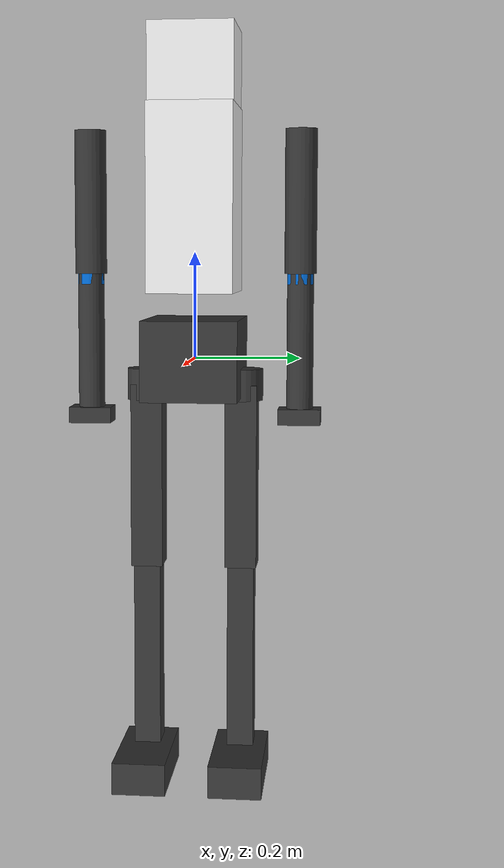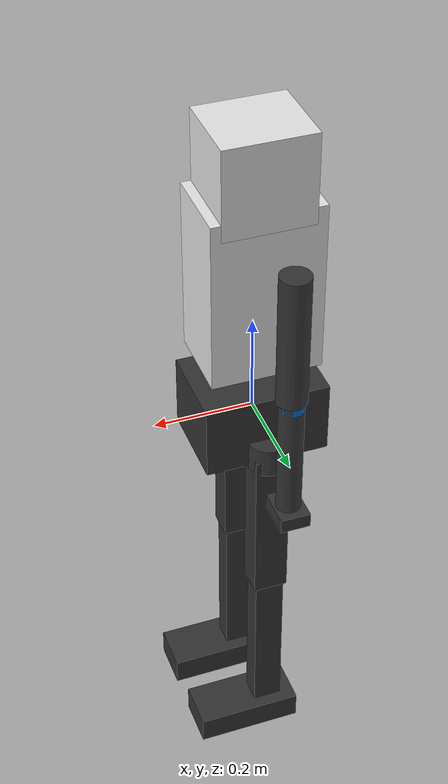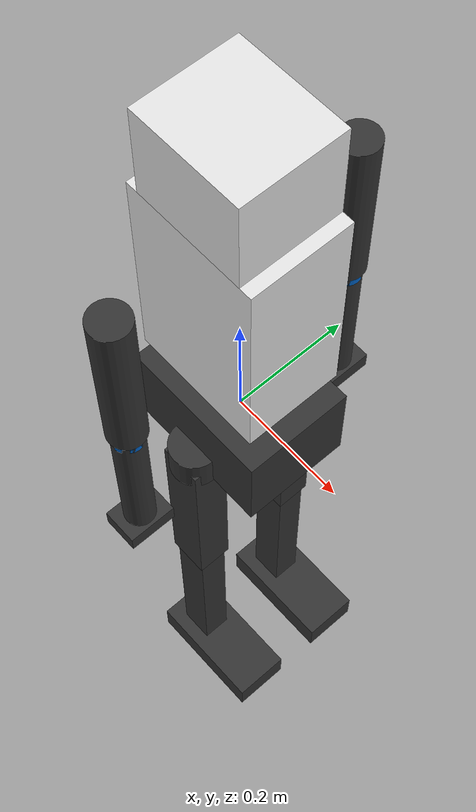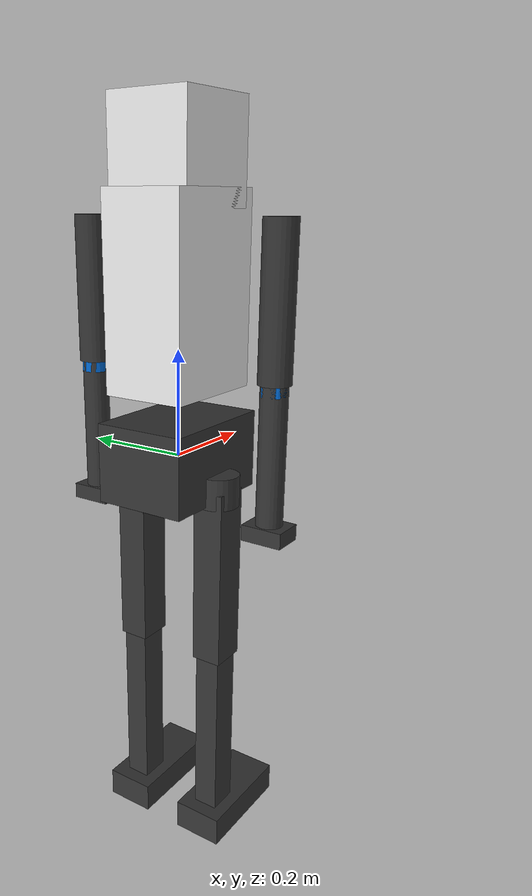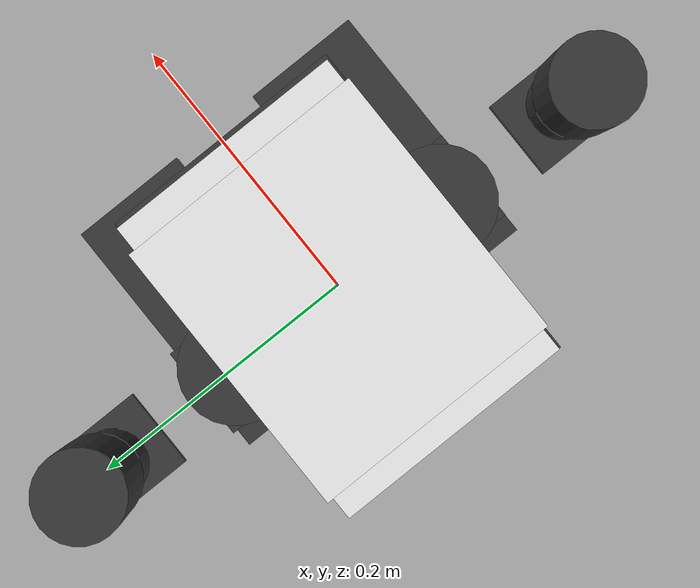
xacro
<?xml version="1.0"?>
<robot xmlns:xacro="http://www.ros.org/wiki/xacro" name="h1">

  <!-- ═══════════════════════════════════════════════════════════════
       Parameters
  ═══════════════════════════════════════════════════════════════ -->
  <xacro:property name="PI" value="3.14159265358979"/>
  <xacro:property name="robot_mass" value="47.0"/>

  <!-- ═══════════════════════════════════════════════════════════════
       Materials
  ═══════════════════════════════════════════════════════════════ -->
  <material name="dark_gray">
    <color rgba="0.2 0.2 0.2 1.0"/>
  </material>
  <material name="white">
    <color rgba="0.9 0.9 0.9 1.0"/>
  </material>
  <material name="blue">
    <color rgba="0.0 0.4 0.8 1.0"/>
  </material>

  <!-- ═══════════════════════════════════════════════════════════════
       Base / Pelvis
  ═══════════════════════════════════════════════════════════════ -->
  <link name="pelvis">
    <inertial>
      <origin xyz="0.0 0.0 0.0" rpy="0 0 0"/>
      <mass value="10.0"/>
      <inertia ixx="0.1" ixy="0.0" ixz="0.0" iyy="0.1" iyz="0.0" izz="0.07"/>
    </inertial>
    <visual>
      <origin xyz="0.0 0.0 0.0" rpy="0 0 0"/>
      <geometry>
        <box size="0.25 0.18 0.15"/>
      </geometry>
      <material name="dark_gray"/>
    </visual>
    <collision>
      <origin xyz="0.0 0.0 0.0" rpy="0 0 0"/>
      <geometry>
        <box size="0.25 0.18 0.15"/>
      </geometry>
    </collision>
  </link>

  <!-- Torso -->
  <joint name="torso_joint" type="fixed">
    <parent link="pelvis"/>
    <child link="torso_link"/>
    <origin xyz="0.0 0.0 0.15" rpy="0 0 0"/>
  </joint>

  <link name="torso_link">
    <inertial>
      <origin xyz="0.0 0.0 0.15" rpy="0 0 0"/>
      <mass value="15.0"/>
      <inertia ixx="0.2" ixy="0.0" ixz="0.0" iyy="0.18" iyz="0.0" izz="0.08"/>
    </inertial>
    <visual>
      <origin xyz="0.0 0.0 0.15" rpy="0 0 0"/>
      <geometry>
        <box size="0.22 0.16 0.35"/>
      </geometry>
      <material name="white"/>
    </visual>
    <collision>
      <origin xyz="0.0 0.0 0.15" rpy="0 0 0"/>
      <geometry>
        <box size="0.22 0.16 0.35"/>
      </geometry>
    </collision>
  </link>

  <!-- ═══════════════════════════════════════════════════════════════
       Left Leg macro
  ═══════════════════════════════════════════════════════════════ -->
  <xacro:macro name="leg" params="side sign">
    <!-- Hip Yaw -->
    <joint name="${side}_hip_yaw" type="revolute">
      <parent link="pelvis"/>
      <child link="${side}_hip_yaw_link"/>
      <origin xyz="0.0 ${sign * 0.09} -0.05" rpy="0 0 0"/>
      <axis xyz="0 0 1"/>
      <limit lower="-0.785" upper="0.785" effort="200" velocity="10"/>
      <dynamics damping="1.0" friction="0.5"/>
    </joint>
    <link name="${side}_hip_yaw_link">
      <inertial>
        <mass value="1.5"/>
        <inertia ixx="0.003" ixy="0" ixz="0" iyy="0.003" iyz="0" izz="0.002"/>
      </inertial>
      <visual>
        <geometry><cylinder radius="0.04" length="0.06"/></geometry>
        <material name="dark_gray"/>
      </visual>
      <collision>
        <geometry><cylinder radius="0.04" length="0.06"/></geometry>
      </collision>
    </link>

    <!-- Hip Roll -->
    <joint name="${side}_hip_roll" type="revolute">
      <parent link="${side}_hip_yaw_link"/>
      <child link="${side}_hip_roll_link"/>
      <origin xyz="0.0 0.0 0.0" rpy="0 0 0"/>
      <axis xyz="1 0 0"/>
      <limit lower="-0.523" upper="0.523" effort="200" velocity="10"/>
      <dynamics damping="1.0" friction="0.5"/>
    </joint>
    <link name="${side}_hip_roll_link">
      <inertial>
        <mass value="2.0"/>
        <inertia ixx="0.004" ixy="0" ixz="0" iyy="0.004" iyz="0" izz="0.003"/>
      </inertial>
      <visual>
        <geometry><cylinder radius="0.04" length="0.06"/></geometry>
        <material name="blue"/>
      </visual>
      <collision>
        <geometry><cylinder radius="0.04" length="0.06"/></geometry>
      </collision>
    </link>

    <!-- Hip Pitch -->
    <joint name="${side}_hip_pitch" type="revolute">
      <parent link="${side}_hip_roll_link"/>
      <child link="${side}_thigh_link"/>
      <origin xyz="0.0 0.0 0.0" rpy="0 0 0"/>
      <axis xyz="0 1 0"/>
      <limit lower="-1.57" upper="1.57" effort="200" velocity="10"/>
      <dynamics damping="2.0" friction="0.5"/>
    </joint>
    <link name="${side}_thigh_link">
      <inertial>
        <origin xyz="0.0 0.0 -0.175" rpy="0 0 0"/>
        <mass value="5.0"/>
        <inertia ixx="0.05" ixy="0" ixz="0" iyy="0.05" iyz="0" izz="0.005"/>
      </inertial>
      <visual>
        <origin xyz="0.0 0.0 -0.175" rpy="0 0 0"/>
        <geometry><box size="0.07 0.06 0.35"/></geometry>
        <material name="dark_gray"/>
      </visual>
      <collision>
        <origin xyz="0.0 0.0 -0.175" rpy="0 0 0"/>
        <geometry><box size="0.07 0.06 0.35"/></geometry>
      </collision>
    </link>

    <!-- Knee -->
    <joint name="${side}_knee" type="revolute">
      <parent link="${side}_thigh_link"/>
      <child link="${side}_shank_link"/>
      <origin xyz="0.0 0.0 -0.35" rpy="0 0 0"/>
      <axis xyz="0 1 0"/>
      <limit lower="-0.087" upper="2.443" effort="300" velocity="10"/>
      <dynamics damping="2.0" friction="0.5"/>
    </joint>
    <link name="${side}_shank_link">
      <inertial>
        <origin xyz="0.0 0.0 -0.175" rpy="0 0 0"/>
        <mass value="3.5"/>
        <inertia ixx="0.03" ixy="0" ixz="0" iyy="0.03" iyz="0" izz="0.003"/>
      </inertial>
      <visual>
        <origin xyz="0.0 0.0 -0.175" rpy="0 0 0"/>
        <geometry><box size="0.06 0.05 0.35"/></geometry>
        <material name="dark_gray"/>
      </visual>
      <collision>
        <origin xyz="0.0 0.0 -0.175" rpy="0 0 0"/>
        <geometry><box size="0.06 0.05 0.35"/></geometry>
      </collision>
    </link>

    <!-- Ankle -->
    <joint name="${side}_ankle" type="revolute">
      <parent link="${side}_shank_link"/>
      <child link="${side}_ankle_link"/>
      <origin xyz="0.0 0.0 -0.35" rpy="0 0 0"/>
      <axis xyz="0 1 0"/>
      <limit lower="-0.785" upper="0.785" effort="40" velocity="10"/>
      <dynamics damping="0.5" friction="0.1"/>
    </joint>
    <link name="${side}_ankle_link">
      <inertial>
        <origin xyz="0.05 0.0 -0.03" rpy="0 0 0"/>
        <mass value="1.5"/>
        <inertia ixx="0.003" ixy="0" ixz="0" iyy="0.005" iyz="0" izz="0.005"/>
      </inertial>
      <visual>
        <origin xyz="0.05 0.0 -0.03" rpy="0 0 0"/>
        <geometry><box size="0.22 0.1 0.06"/></geometry>
        <material name="dark_gray"/>
      </visual>
      <collision>
        <origin xyz="0.05 0.0 -0.03" rpy="0 0 0"/>
        <geometry><box size="0.22 0.1 0.06"/></geometry>
      </collision>
    </link>
  </xacro:macro>

  <!-- ═══════════════════════════════════════════════════════════════
       Arm macro
  ═══════════════════════════════════════════════════════════════ -->
  <xacro:macro name="arm" params="side sign">
    <!-- Shoulder Pitch -->
    <joint name="${side}_shoulder_pitch" type="revolute">
      <parent link="torso_link"/>
      <child link="${side}_upper_arm_link"/>
      <origin xyz="0.0 ${sign * 0.2} 0.28" rpy="0 0 0"/>
      <axis xyz="0 1 0"/>
      <limit lower="-3.14" upper="3.14" effort="40" velocity="10"/>
      <dynamics damping="0.5" friction="0.1"/>
    </joint>
    <link name="${side}_upper_arm_link">
      <inertial>
        <origin xyz="0.0 0.0 -0.135" rpy="0 0 0"/>
        <mass value="2.0"/>
        <inertia ixx="0.01" ixy="0" ixz="0" iyy="0.01" iyz="0" izz="0.001"/>
      </inertial>
      <visual>
        <origin xyz="0.0 0.0 -0.135" rpy="0 0 0"/>
        <geometry><cylinder radius="0.03" length="0.27"/></geometry>
        <material name="dark_gray"/>
      </visual>
      <collision>
        <origin xyz="0.0 0.0 -0.135" rpy="0 0 0"/>
        <geometry><cylinder radius="0.03" length="0.27"/></geometry>
      </collision>
    </link>

    <!-- Shoulder Roll -->
    <joint name="${side}_shoulder_roll" type="revolute">
      <parent link="${side}_upper_arm_link"/>
      <child link="${side}_upper_arm_roll_link"/>
      <origin xyz="0.0 0.0 -0.27" rpy="0 0 0"/>
      <axis xyz="1 0 0"/>
      <limit lower="-1.57" upper="1.57" effort="40" velocity="10"/>
      <dynamics damping="0.5" friction="0.1"/>
    </joint>
    <link name="${side}_upper_arm_roll_link">
      <inertial>
        <mass value="0.5"/>
        <inertia ixx="0.001" ixy="0" ixz="0" iyy="0.001" iyz="0" izz="0.001"/>
      </inertial>
      <visual>
        <geometry><cylinder radius="0.025" length="0.04"/></geometry>
        <material name="blue"/>
      </visual>
      <collision>
        <geometry><cylinder radius="0.025" length="0.04"/></geometry>
      </collision>
    </link>

    <!-- Elbow -->
    <joint name="${side}_elbow" type="revolute">
      <parent link="${side}_upper_arm_roll_link"/>
      <child link="${side}_lower_arm_link"/>
      <origin xyz="0.0 0.0 0.0" rpy="0 0 0"/>
      <axis xyz="0 1 0"/>
      <limit lower="-1.57" upper="1.57" effort="40" velocity="10"/>
      <dynamics damping="0.5" friction="0.1"/>
    </joint>
    <link name="${side}_lower_arm_link">
      <inertial>
        <origin xyz="0.0 0.0 -0.135" rpy="0 0 0"/>
        <mass value="1.5"/>
        <inertia ixx="0.007" ixy="0" ixz="0" iyy="0.007" iyz="0" izz="0.001"/>
      </inertial>
      <visual>
        <origin xyz="0.0 0.0 -0.135" rpy="0 0 0"/>
        <geometry><cylinder radius="0.025" length="0.27"/></geometry>
        <material name="dark_gray"/>
      </visual>
      <collision>
        <origin xyz="0.0 0.0 -0.135" rpy="0 0 0"/>
        <geometry><cylinder radius="0.025" length="0.27"/></geometry>
      </collision>
    </link>

    <!-- Wrist -->
    <joint name="${side}_wrist" type="revolute">
      <parent link="${side}_lower_arm_link"/>
      <child link="${side}_hand_link"/>
      <origin xyz="0.0 0.0 -0.27" rpy="0 0 0"/>
      <axis xyz="0 0 1"/>
      <limit lower="-1.57" upper="1.57" effort="10" velocity="10"/>
      <dynamics damping="0.1" friction="0.05"/>
    </joint>
    <link name="${side}_hand_link">
      <inertial>
        <mass value="0.5"/>
        <inertia ixx="0.001" ixy="0" ixz="0" iyy="0.001" iyz="0" izz="0.001"/>
      </inertial>
      <visual>
        <geometry><box size="0.06 0.08 0.03"/></geometry>
        <material name="dark_gray"/>
      </visual>
      <collision>
        <geometry><box size="0.06 0.08 0.03"/></geometry>
      </collision>
    </link>
  </xacro:macro>

  <!-- ═══════════════════════════════════════════════════════════════
       Head / Camera
  ═══════════════════════════════════════════════════════════════ -->
  <joint name="head_joint" type="fixed">
    <parent link="torso_link"/>
    <child link="head_link"/>
    <origin xyz="0.0 0.0 0.38" rpy="0 0 0"/>
  </joint>
  <link name="head_link">
    <inertial>
      <mass value="2.0"/>
      <inertia ixx="0.008" ixy="0" ixz="0" iyy="0.008" iyz="0" izz="0.006"/>
    </inertial>
    <visual>
      <geometry><box size="0.18 0.16 0.18"/></geometry>
      <material name="white"/>
    </visual>
    <collision>
      <geometry><box size="0.18 0.16 0.18"/></geometry>
    </collision>
  </link>

  <!-- IMU sensor frame -->
  <joint name="imu_joint" type="fixed">
    <parent link="pelvis"/>
    <child link="imu_link"/>
    <origin xyz="0.0 0.0 0.0" rpy="0 0 0"/>
  </joint>
  <link name="imu_link"/>

  <!-- ═══════════════════════════════════════════════════════════════
       Instantiate legs and arms
  ═══════════════════════════════════════════════════════════════ -->
  <xacro:leg side="left"  sign="1"/>
  <xacro:leg side="right" sign="-1"/>
  <xacro:arm side="left"  sign="1"/>
  <xacro:arm side="right" sign="-1"/>

  <!-- ═══════════════════════════════════════════════════════════════
       ROS2 Control hardware interface
  ═══════════════════════════════════════════════════════════════ -->
  <ros2_control name="h1_control" type="system">
    <hardware>
      <plugin>mock_components/GenericSystem</plugin>
    </hardware>
    <xacro:macro name="joint_interface" params="joint_name">
      <joint name="${joint_name}">
        <command_interface name="effort">
          <param name="min">-300</param>
          <param name="max">300</param>
        </command_interface>
        <state_interface name="position"/>
        <state_interface name="velocity"/>
        <state_interface name="effort"/>
      </joint>
    </xacro:macro>
    <xacro:joint_interface joint_name="left_hip_yaw"/>
    <xacro:joint_interface joint_name="left_hip_roll"/>
    <xacro:joint_interface joint_name="left_hip_pitch"/>
    <xacro:joint_interface joint_name="left_knee"/>
    <xacro:joint_interface joint_name="left_ankle"/>
    <xacro:joint_interface joint_name="right_hip_yaw"/>
    <xacro:joint_interface joint_name="right_hip_roll"/>
    <xacro:joint_interface joint_name="right_hip_pitch"/>
    <xacro:joint_interface joint_name="right_knee"/>
    <xacro:joint_interface joint_name="right_ankle"/>
    <xacro:joint_interface joint_name="left_shoulder_pitch"/>
    <xacro:joint_interface joint_name="left_shoulder_roll"/>
    <xacro:joint_interface joint_name="left_elbow"/>
    <xacro:joint_interface joint_name="left_wrist"/>
    <xacro:joint_interface joint_name="right_shoulder_pitch"/>
    <xacro:joint_interface joint_name="right_shoulder_roll"/>
    <xacro:joint_interface joint_name="right_elbow"/>
    <xacro:joint_interface joint_name="right_wrist"/>
  </ros2_control>

</robot>
